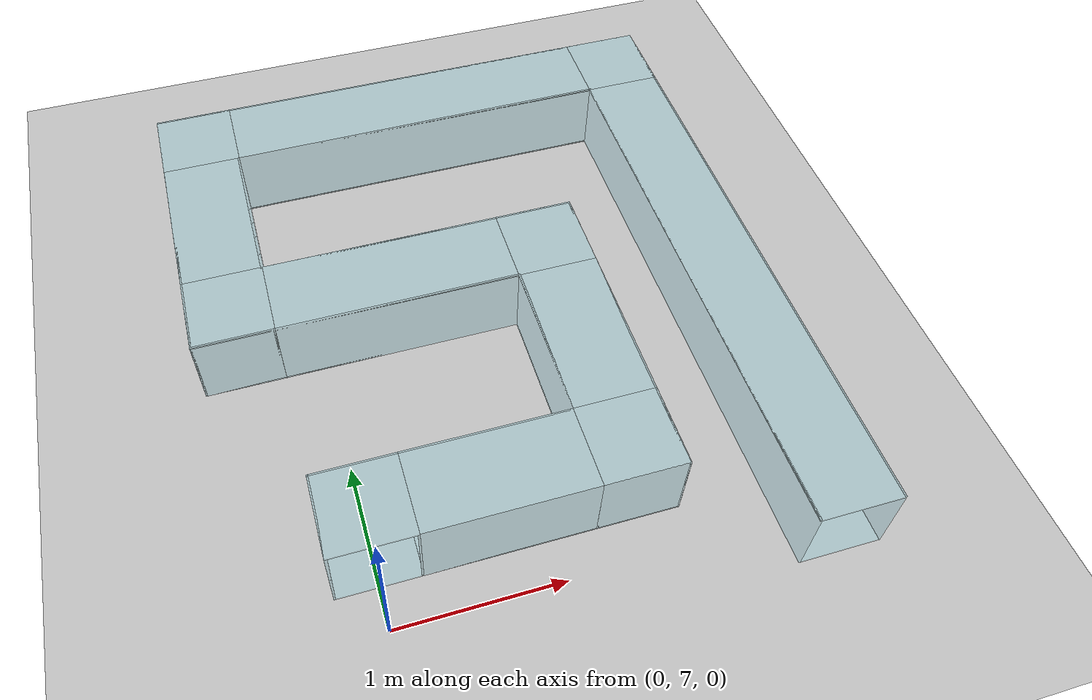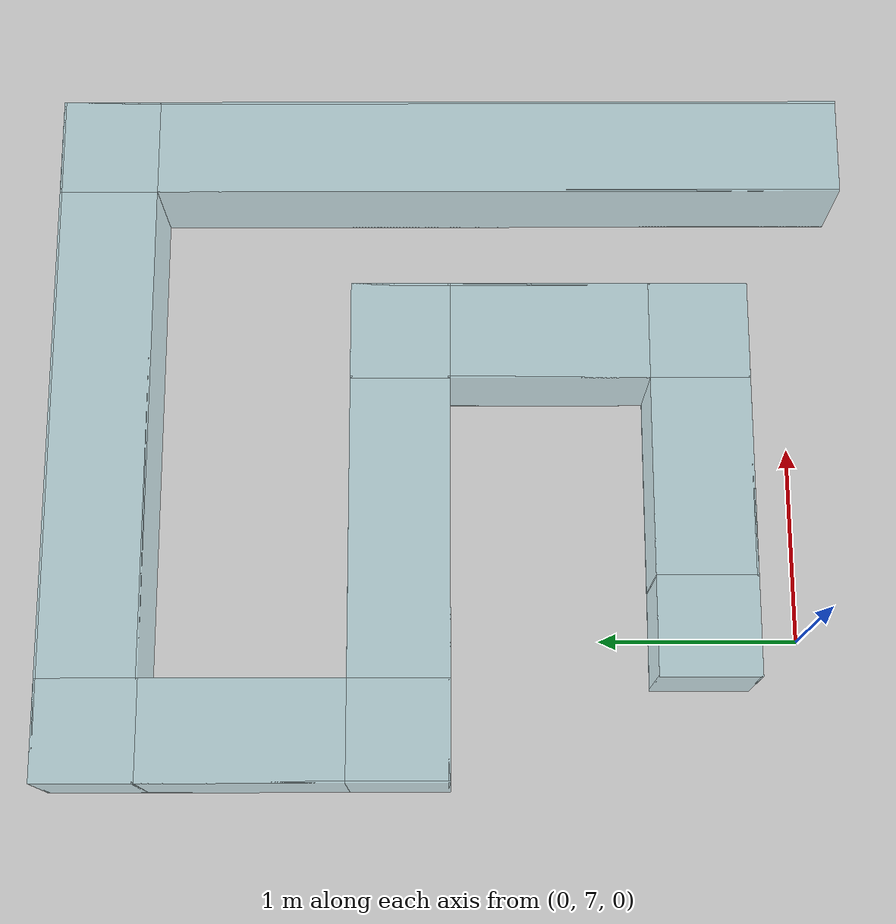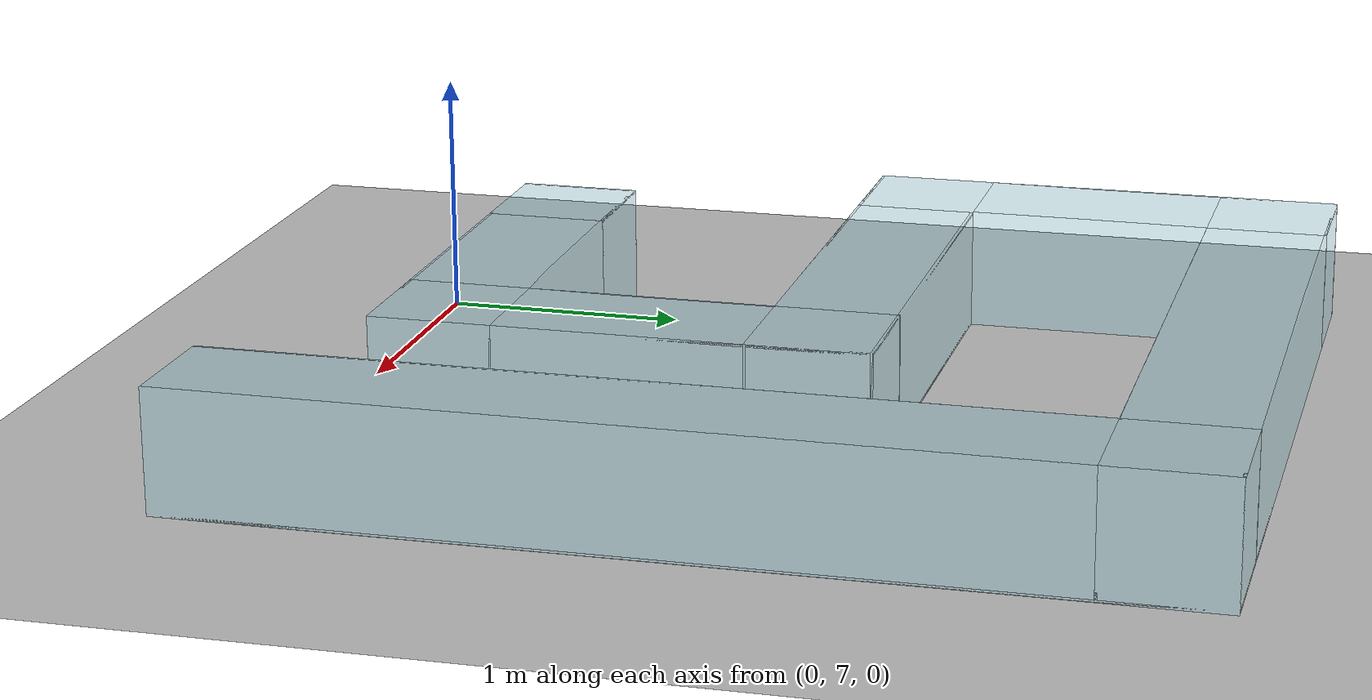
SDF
<sdf version="1.8">
 <world name="demo">
  <model name="ground_plane">
   <static>true</static>
   <link name="link">
    <collision name="collision">
     <geometry><plane><normal>0 0 1</normal><size>100 100</size></plane></geometry>
    </collision>
    <visual name="visual">
     <geometry><plane><normal>0 0 1</normal><size>100 100</size></plane></geometry>
     <material>
      <ambient>0.8 0.8 0.8 1</ambient>
      <diffuse>0.8 0.8 0.8 1</diffuse>
      <specular>0.8 0.8 0.8 1</specular>
     </material>
    </visual>
   </link>
  </model>
  <model name="ground_plane">
   <static>true</static>
   <link name="link">
    <collision name="collision">
     <geometry><plane><normal>0 0 1</normal><size>100 100</size></plane></geometry>
    </collision>
    <visual name="visual">
     <geometry><plane><normal>0 0 1</normal><size>100 100</size></plane></geometry>
     <material>
      <ambient>0.6 0.85 0.9 0.4</ambient>
      <diffuse>0.6 0.85 0.9 0.4</diffuse>
      <specular>0.1 0.1 0.1 1</specular>
      <emissive>0 0 0 1</emissive>
     </material>
    </visual>
   </link>
  </model>
  <model name="T9">
   <pose>0.750000 7.500000 0.250000 0.000000 0.000000 0.000000</pose>
   <static>true</static>
   <link name="link">
    <collision name="col_side_posY">
     <pose>0.000000 0.245000 0.000000 0.000000 0.000000 0.000000</pose>
     <geometry><box><size>1.000000 0.010000 0.500000</size></box></geometry>
    </collision>
    <visual name="vis_col_side_posY">
     <pose>0.000000 0.245000 0.000000 0.000000 0.000000 0.000000</pose>
     <geometry><box><size>1.000000 0.010000 0.500000</size></box></geometry>
     <material>
      <ambient>0.6 0.85 0.9 0.4</ambient>
      <diffuse>0.6 0.85 0.9 0.4</diffuse>
      <specular>0.1 0.1 0.1 1</specular>
      <emissive>0 0 0 1</emissive>
     </material>
    </visual>
    <collision name="col_side_negY">
     <pose>0.000000 -0.245000 0.000000 0.000000 0.000000 0.000000</pose>
     <geometry><box><size>1.000000 0.010000 0.500000</size></box></geometry>
    </collision>
    <visual name="vis_col_side_negY">
     <pose>0.000000 -0.245000 0.000000 0.000000 0.000000 0.000000</pose>
     <geometry><box><size>1.000000 0.010000 0.500000</size></box></geometry>
     <material>
      <ambient>0.6 0.85 0.9 0.4</ambient>
      <diffuse>0.6 0.85 0.9 0.4</diffuse>
      <specular>0.1 0.1 0.1 1</specular>
      <emissive>0 0 0 1</emissive>
     </material>
    </visual>
    <collision name="col_top">
     <pose>0.000000 0.000000 0.245000 0.000000 0.000000 0.000000</pose>
     <geometry><box><size>1.000000 0.500000 0.010000</size></box></geometry>
    </collision>
    <visual name="vis_col_top">
     <pose>0.000000 0.000000 0.245000 0.000000 0.000000 0.000000</pose>
     <geometry><box><size>1.000000 0.500000 0.010000</size></box></geometry>
     <material>
      <ambient>0.6 0.85 0.9 0.4</ambient>
      <diffuse>0.6 0.85 0.9 0.4</diffuse>
      <specular>0.1 0.1 0.1 1</specular>
      <emissive>0 0 0 1</emissive>
     </material>
    </visual>
    <collision name="col_bottom">
     <pose>0.000000 0.000000 -0.245000 0.000000 0.000000 0.000000</pose>
     <geometry><box><size>1.000000 0.500000 0.010000</size></box></geometry>
    </collision>
    <visual name="vis_col_bottom">
     <pose>0.000000 0.000000 -0.245000 0.000000 0.000000 0.000000</pose>
     <geometry><box><size>1.000000 0.500000 0.010000</size></box></geometry>
     <material>
      <ambient>0.6 0.85 0.9 0.4</ambient>
      <diffuse>0.6 0.85 0.9 0.4</diffuse>
      <specular>0.1 0.1 0.1 1</specular>
      <emissive>0 0 0 1</emissive>
     </material>
    </visual>
   </link>
  </model>
  <model name="T10">
   <pose>1.500000 8.250000 0.250000 0.000000 0.000000 0.000000</pose>
   <static>true</static>
   <link name="link">
    <collision name="col_side_posX">
     <pose>0.245000 0.000000 0.000000 0.000000 0.000000 0.000000</pose>
     <geometry><box><size>0.010000 1.000000 0.500000</size></box></geometry>
    </collision>
    <visual name="vis_col_side_posX">
     <pose>0.245000 0.000000 0.000000 0.000000 0.000000 0.000000</pose>
     <geometry><box><size>0.010000 1.000000 0.500000</size></box></geometry>
     <material>
      <ambient>0.6 0.85 0.9 0.4</ambient>
      <diffuse>0.6 0.85 0.9 0.4</diffuse>
      <specular>0.1 0.1 0.1 1</specular>
      <emissive>0 0 0 1</emissive>
     </material>
    </visual>
    <collision name="col_side_negX">
     <pose>-0.245000 0.000000 0.000000 0.000000 0.000000 0.000000</pose>
     <geometry><box><size>0.010000 1.000000 0.500000</size></box></geometry>
    </collision>
    <visual name="vis_col_side_negX">
     <pose>-0.245000 0.000000 0.000000 0.000000 0.000000 0.000000</pose>
     <geometry><box><size>0.010000 1.000000 0.500000</size></box></geometry>
     <material>
      <ambient>0.6 0.85 0.9 0.4</ambient>
      <diffuse>0.6 0.85 0.9 0.4</diffuse>
      <specular>0.1 0.1 0.1 1</specular>
      <emissive>0 0 0 1</emissive>
     </material>
    </visual>
    <collision name="col_top">
     <pose>0.000000 0.000000 0.245000 0.000000 0.000000 0.000000</pose>
     <geometry><box><size>0.500000 1.000000 0.010000</size></box></geometry>
    </collision>
    <visual name="vis_col_top">
     <pose>0.000000 0.000000 0.245000 0.000000 0.000000 0.000000</pose>
     <geometry><box><size>0.500000 1.000000 0.010000</size></box></geometry>
     <material>
      <ambient>0.6 0.85 0.9 0.4</ambient>
      <diffuse>0.6 0.85 0.9 0.4</diffuse>
      <specular>0.1 0.1 0.1 1</specular>
      <emissive>0 0 0 1</emissive>
     </material>
    </visual>
    <collision name="col_bottom">
     <pose>0.000000 0.000000 -0.245000 0.000000 0.000000 0.000000</pose>
     <geometry><box><size>0.500000 1.000000 0.010000</size></box></geometry>
    </collision>
    <visual name="vis_col_bottom">
     <pose>0.000000 0.000000 -0.245000 0.000000 0.000000 0.000000</pose>
     <geometry><box><size>0.500000 1.000000 0.010000</size></box></geometry>
     <material>
      <ambient>0.6 0.85 0.9 0.4</ambient>
      <diffuse>0.6 0.85 0.9 0.4</diffuse>
      <specular>0.1 0.1 0.1 1</specular>
      <emissive>0 0 0 1</emissive>
     </material>
    </visual>
   </link>
  </model>
  <model name="T11">
   <pose>0.500000 9.000000 0.250000 0.000000 0.000000 0.000000</pose>
   <static>true</static>
   <link name="link">
    <collision name="col_side_posY">
     <pose>0.000000 0.245000 0.000000 0.000000 0.000000 0.000000</pose>
     <geometry><box><size>1.500000 0.010000 0.500000</size></box></geometry>
    </collision>
    <visual name="vis_col_side_posY">
     <pose>0.000000 0.245000 0.000000 0.000000 0.000000 0.000000</pose>
     <geometry><box><size>1.500000 0.010000 0.500000</size></box></geometry>
     <material>
      <ambient>0.6 0.85 0.9 0.4</ambient>
      <diffuse>0.6 0.85 0.9 0.4</diffuse>
      <specular>0.1 0.1 0.1 1</specular>
      <emissive>0 0 0 1</emissive>
     </material>
    </visual>
    <collision name="col_side_negY">
     <pose>0.000000 -0.245000 0.000000 0.000000 0.000000 0.000000</pose>
     <geometry><box><size>1.500000 0.010000 0.500000</size></box></geometry>
    </collision>
    <visual name="vis_col_side_negY">
     <pose>0.000000 -0.245000 0.000000 0.000000 0.000000 0.000000</pose>
     <geometry><box><size>1.500000 0.010000 0.500000</size></box></geometry>
     <material>
      <ambient>0.6 0.85 0.9 0.4</ambient>
      <diffuse>0.6 0.85 0.9 0.4</diffuse>
      <specular>0.1 0.1 0.1 1</specular>
      <emissive>0 0 0 1</emissive>
     </material>
    </visual>
    <collision name="col_top">
     <pose>0.000000 0.000000 0.245000 0.000000 0.000000 0.000000</pose>
     <geometry><box><size>1.500000 0.500000 0.010000</size></box></geometry>
    </collision>
    <visual name="vis_col_top">
     <pose>0.000000 0.000000 0.245000 0.000000 0.000000 0.000000</pose>
     <geometry><box><size>1.500000 0.500000 0.010000</size></box></geometry>
     <material>
      <ambient>0.6 0.85 0.9 0.4</ambient>
      <diffuse>0.6 0.85 0.9 0.4</diffuse>
      <specular>0.1 0.1 0.1 1</specular>
      <emissive>0 0 0 1</emissive>
     </material>
    </visual>
    <collision name="col_bottom">
     <pose>0.000000 0.000000 -0.245000 0.000000 0.000000 0.000000</pose>
     <geometry><box><size>1.500000 0.500000 0.010000</size></box></geometry>
    </collision>
    <visual name="vis_col_bottom">
     <pose>0.000000 0.000000 -0.245000 0.000000 0.000000 0.000000</pose>
     <geometry><box><size>1.500000 0.500000 0.010000</size></box></geometry>
     <material>
      <ambient>0.6 0.85 0.9 0.4</ambient>
      <diffuse>0.6 0.85 0.9 0.4</diffuse>
      <specular>0.1 0.1 0.1 1</specular>
      <emissive>0 0 0 1</emissive>
     </material>
    </visual>
   </link>
  </model>
  <model name="T12">
   <pose>-0.500000 9.750000 0.250000 0.000000 0.000000 0.000000</pose>
   <static>true</static>
   <link name="link">
    <collision name="col_side_posX">
     <pose>0.245000 0.000000 0.000000 0.000000 0.000000 0.000000</pose>
     <geometry><box><size>0.010000 1.000000 0.500000</size></box></geometry>
    </collision>
    <visual name="vis_col_side_posX">
     <pose>0.245000 0.000000 0.000000 0.000000 0.000000 0.000000</pose>
     <geometry><box><size>0.010000 1.000000 0.500000</size></box></geometry>
     <material>
      <ambient>0.6 0.85 0.9 0.4</ambient>
      <diffuse>0.6 0.85 0.9 0.4</diffuse>
      <specular>0.1 0.1 0.1 1</specular>
      <emissive>0 0 0 1</emissive>
     </material>
    </visual>
    <collision name="col_side_negX">
     <pose>-0.245000 0.000000 0.000000 0.000000 0.000000 0.000000</pose>
     <geometry><box><size>0.010000 1.000000 0.500000</size></box></geometry>
    </collision>
    <visual name="vis_col_side_negX">
     <pose>-0.245000 0.000000 0.000000 0.000000 0.000000 0.000000</pose>
     <geometry><box><size>0.010000 1.000000 0.500000</size></box></geometry>
     <material>
      <ambient>0.6 0.85 0.9 0.4</ambient>
      <diffuse>0.6 0.85 0.9 0.4</diffuse>
      <specular>0.1 0.1 0.1 1</specular>
      <emissive>0 0 0 1</emissive>
     </material>
    </visual>
    <collision name="col_top">
     <pose>0.000000 0.000000 0.245000 0.000000 0.000000 0.000000</pose>
     <geometry><box><size>0.500000 1.000000 0.010000</size></box></geometry>
    </collision>
    <visual name="vis_col_top">
     <pose>0.000000 0.000000 0.245000 0.000000 0.000000 0.000000</pose>
     <geometry><box><size>0.500000 1.000000 0.010000</size></box></geometry>
     <material>
      <ambient>0.6 0.85 0.9 0.4</ambient>
      <diffuse>0.6 0.85 0.9 0.4</diffuse>
      <specular>0.1 0.1 0.1 1</specular>
      <emissive>0 0 0 1</emissive>
     </material>
    </visual>
    <collision name="col_bottom">
     <pose>0.000000 0.000000 -0.245000 0.000000 0.000000 0.000000</pose>
     <geometry><box><size>0.500000 1.000000 0.010000</size></box></geometry>
    </collision>
    <visual name="vis_col_bottom">
     <pose>0.000000 0.000000 -0.245000 0.000000 0.000000 0.000000</pose>
     <geometry><box><size>0.500000 1.000000 0.010000</size></box></geometry>
     <material>
      <ambient>0.6 0.85 0.9 0.4</ambient>
      <diffuse>0.6 0.85 0.9 0.4</diffuse>
      <specular>0.1 0.1 0.1 1</specular>
      <emissive>0 0 0 1</emissive>
     </material>
    </visual>
   </link>
  </model>
  <model name="T13">
   <pose>1.000000 10.500000 0.250000 0.000000 0.000000 0.000000</pose>
   <static>true</static>
   <link name="link">
    <collision name="col_side_posY">
     <pose>0.000000 0.245000 0.000000 0.000000 0.000000 0.000000</pose>
     <geometry><box><size>2.500000 0.010000 0.500000</size></box></geometry>
    </collision>
    <visual name="vis_col_side_posY">
     <pose>0.000000 0.245000 0.000000 0.000000 0.000000 0.000000</pose>
     <geometry><box><size>2.500000 0.010000 0.500000</size></box></geometry>
     <material>
      <ambient>0.6 0.85 0.9 0.4</ambient>
      <diffuse>0.6 0.85 0.9 0.4</diffuse>
      <specular>0.1 0.1 0.1 1</specular>
      <emissive>0 0 0 1</emissive>
     </material>
    </visual>
    <collision name="col_side_negY">
     <pose>0.000000 -0.245000 0.000000 0.000000 0.000000 0.000000</pose>
     <geometry><box><size>2.500000 0.010000 0.500000</size></box></geometry>
    </collision>
    <visual name="vis_col_side_negY">
     <pose>0.000000 -0.245000 0.000000 0.000000 0.000000 0.000000</pose>
     <geometry><box><size>2.500000 0.010000 0.500000</size></box></geometry>
     <material>
      <ambient>0.6 0.85 0.9 0.4</ambient>
      <diffuse>0.6 0.85 0.9 0.4</diffuse>
      <specular>0.1 0.1 0.1 1</specular>
      <emissive>0 0 0 1</emissive>
     </material>
    </visual>
    <collision name="col_top">
     <pose>0.000000 0.000000 0.245000 0.000000 0.000000 0.000000</pose>
     <geometry><box><size>2.500000 0.500000 0.010000</size></box></geometry>
    </collision>
    <visual name="vis_col_top">
     <pose>0.000000 0.000000 0.245000 0.000000 0.000000 0.000000</pose>
     <geometry><box><size>2.500000 0.500000 0.010000</size></box></geometry>
     <material>
      <ambient>0.6 0.85 0.9 0.4</ambient>
      <diffuse>0.6 0.85 0.9 0.4</diffuse>
      <specular>0.1 0.1 0.1 1</specular>
      <emissive>0 0 0 1</emissive>
     </material>
    </visual>
    <collision name="col_bottom">
     <pose>0.000000 0.000000 -0.245000 0.000000 0.000000 0.000000</pose>
     <geometry><box><size>2.500000 0.500000 0.010000</size></box></geometry>
    </collision>
    <visual name="vis_col_bottom">
     <pose>0.000000 0.000000 -0.245000 0.000000 0.000000 0.000000</pose>
     <geometry><box><size>2.500000 0.500000 0.010000</size></box></geometry>
     <material>
      <ambient>0.6 0.85 0.9 0.4</ambient>
      <diffuse>0.6 0.85 0.9 0.4</diffuse>
      <specular>0.1 0.1 0.1 1</specular>
      <emissive>0 0 0 1</emissive>
     </material>
    </visual>
   </link>
  </model>
  <model name="T14">
   <pose>2.500000 8.500000 0.250000 0.000000 0.000000 0.000000</pose>
   <static>true</static>
   <link name="link">
    <collision name="col_side_posX">
     <pose>0.245000 0.000000 0.000000 0.000000 0.000000 0.000000</pose>
     <geometry><box><size>0.010000 3.500000 0.500000</size></box></geometry>
    </collision>
    <visual name="vis_col_side_posX">
     <pose>0.245000 0.000000 0.000000 0.000000 0.000000 0.000000</pose>
     <geometry><box><size>0.010000 3.500000 0.500000</size></box></geometry>
     <material>
      <ambient>0.6 0.85 0.9 0.4</ambient>
      <diffuse>0.6 0.85 0.9 0.4</diffuse>
      <specular>0.1 0.1 0.1 1</specular>
      <emissive>0 0 0 1</emissive>
     </material>
    </visual>
    <collision name="col_side_negX">
     <pose>-0.245000 0.000000 0.000000 0.000000 0.000000 0.000000</pose>
     <geometry><box><size>0.010000 3.500000 0.500000</size></box></geometry>
    </collision>
    <visual name="vis_col_side_negX">
     <pose>-0.245000 0.000000 0.000000 0.000000 0.000000 0.000000</pose>
     <geometry><box><size>0.010000 3.500000 0.500000</size></box></geometry>
     <material>
      <ambient>0.6 0.85 0.9 0.4</ambient>
      <diffuse>0.6 0.85 0.9 0.4</diffuse>
      <specular>0.1 0.1 0.1 1</specular>
      <emissive>0 0 0 1</emissive>
     </material>
    </visual>
    <collision name="col_top">
     <pose>0.000000 0.000000 0.245000 0.000000 0.000000 0.000000</pose>
     <geometry><box><size>0.500000 3.500000 0.010000</size></box></geometry>
    </collision>
    <visual name="vis_col_top">
     <pose>0.000000 0.000000 0.245000 0.000000 0.000000 0.000000</pose>
     <geometry><box><size>0.500000 3.500000 0.010000</size></box></geometry>
     <material>
      <ambient>0.6 0.85 0.9 0.4</ambient>
      <diffuse>0.6 0.85 0.9 0.4</diffuse>
      <specular>0.1 0.1 0.1 1</specular>
      <emissive>0 0 0 1</emissive>
     </material>
    </visual>
    <collision name="col_bottom">
     <pose>0.000000 0.000000 -0.245000 0.000000 0.000000 0.000000</pose>
     <geometry><box><size>0.500000 3.500000 0.010000</size></box></geometry>
    </collision>
    <visual name="vis_col_bottom">
     <pose>0.000000 0.000000 -0.245000 0.000000 0.000000 0.000000</pose>
     <geometry><box><size>0.500000 3.500000 0.010000</size></box></geometry>
     <material>
      <ambient>0.6 0.85 0.9 0.4</ambient>
      <diffuse>0.6 0.85 0.9 0.4</diffuse>
      <specular>0.1 0.1 0.1 1</specular>
      <emissive>0 0 0 1</emissive>
     </material>
    </visual>
   </link>
  </model>
  <model name="C8">
   <pose>0.000000 7.500000 0.250000 0.000000 0.000000 0.000000</pose>
   <static>true</static>
   <link name="link">
    <collision name="wall_negX">
     <pose>-0.245000 0.000000 0.000000 0.000000 0.000000 0.000000</pose>
     <geometry><box><size>0.010000 0.500000 0.500000</size></box></geometry>
    </collision>
    <visual name="vis_wall_negX">
     <pose>-0.245000 0.000000 0.000000 0.000000 0.000000 0.000000</pose>
     <geometry><box><size>0.010000 0.500000 0.500000</size></box></geometry>
     <material>
      <ambient>0.6 0.85 0.9 0.4</ambient>
      <diffuse>0.6 0.85 0.9 0.4</diffuse>
      <specular>0.1 0.1 0.1 1</specular>
      <emissive>0 0 0 1</emissive>
     </material>
    </visual>
    <collision name="wall_posY">
     <pose>0.000000 0.245000 0.000000 0.000000 0.000000 0.000000</pose>
     <geometry><box><size>0.500000 0.010000 0.500000</size></box></geometry>
    </collision>
    <visual name="vis_wall_posY">
     <pose>0.000000 0.245000 0.000000 0.000000 0.000000 0.000000</pose>
     <geometry><box><size>0.500000 0.010000 0.500000</size></box></geometry>
     <material>
      <ambient>0.6 0.85 0.9 0.4</ambient>
      <diffuse>0.6 0.85 0.9 0.4</diffuse>
      <specular>0.1 0.1 0.1 1</specular>
      <emissive>0 0 0 1</emissive>
     </material>
    </visual>
    <collision name="wall_posZ">
     <pose>0.000000 0.000000 0.245000 0.000000 0.000000 0.000000</pose>
     <geometry><box><size>0.500000 0.500000 0.010000</size></box></geometry>
    </collision>
    <visual name="vis_wall_posZ">
     <pose>0.000000 0.000000 0.245000 0.000000 0.000000 0.000000</pose>
     <geometry><box><size>0.500000 0.500000 0.010000</size></box></geometry>
     <material>
      <ambient>0.6 0.85 0.9 0.4</ambient>
      <diffuse>0.6 0.85 0.9 0.4</diffuse>
      <specular>0.1 0.1 0.1 1</specular>
      <emissive>0 0 0 1</emissive>
     </material>
    </visual>
    <collision name="wall_negZ">
     <pose>0.000000 0.000000 -0.245000 0.000000 0.000000 0.000000</pose>
     <geometry><box><size>0.500000 0.500000 0.010000</size></box></geometry>
    </collision>
    <visual name="vis_wall_negZ">
     <pose>0.000000 0.000000 -0.245000 0.000000 0.000000 0.000000</pose>
     <geometry><box><size>0.500000 0.500000 0.010000</size></box></geometry>
     <material>
      <ambient>0.6 0.85 0.9 0.4</ambient>
      <diffuse>0.6 0.85 0.9 0.4</diffuse>
      <specular>0.1 0.1 0.1 1</specular>
      <emissive>0 0 0 1</emissive>
     </material>
    </visual>
    <collision name="corner_pXpY">
     <pose>0.245000 0.245000 0.000000 0.000000 0.000000 0.000000</pose>
     <geometry><box><size>0.010000 0.010000 0.500000</size></box></geometry>
    </collision>
    <visual name="vis_corner_pXpY">
     <pose>0.245000 0.245000 0.000000 0.000000 0.000000 0.000000</pose>
     <geometry><box><size>0.010000 0.010000 0.500000</size></box></geometry>
     <material>
      <ambient>0.6 0.85 0.9 0.4</ambient>
      <diffuse>0.6 0.85 0.9 0.4</diffuse>
      <specular>0.1 0.1 0.1 1</specular>
      <emissive>0 0 0 1</emissive>
     </material>
    </visual>
    <collision name="corner_pXmY">
     <pose>0.245000 -0.245000 0.000000 0.000000 0.000000 0.000000</pose>
     <geometry><box><size>0.010000 0.010000 0.500000</size></box></geometry>
    </collision>
    <visual name="vis_corner_pXmY">
     <pose>0.245000 -0.245000 0.000000 0.000000 0.000000 0.000000</pose>
     <geometry><box><size>0.010000 0.010000 0.500000</size></box></geometry>
     <material>
      <ambient>0.6 0.85 0.9 0.4</ambient>
      <diffuse>0.6 0.85 0.9 0.4</diffuse>
      <specular>0.1 0.1 0.1 1</specular>
      <emissive>0 0 0 1</emissive>
     </material>
    </visual>
    <collision name="corner_mXmY">
     <pose>-0.245000 -0.245000 0.000000 0.000000 0.000000 0.000000</pose>
     <geometry><box><size>0.010000 0.010000 0.500000</size></box></geometry>
    </collision>
    <visual name="vis_corner_mXmY">
     <pose>-0.245000 -0.245000 0.000000 0.000000 0.000000 0.000000</pose>
     <geometry><box><size>0.010000 0.010000 0.500000</size></box></geometry>
     <material>
      <ambient>0.6 0.85 0.9 0.4</ambient>
      <diffuse>0.6 0.85 0.9 0.4</diffuse>
      <specular>0.1 0.1 0.1 1</specular>
      <emissive>0 0 0 1</emissive>
     </material>
    </visual>
   </link>
  </model>
  <model name="C9">
   <pose>1.500000 7.500000 0.250000 0.000000 0.000000 0.000000</pose>
   <static>true</static>
   <link name="link">
    <collision name="wall_posX">
     <pose>0.245000 0.000000 0.000000 0.000000 0.000000 0.000000</pose>
     <geometry><box><size>0.010000 0.500000 0.500000</size></box></geometry>
    </collision>
    <visual name="vis_wall_posX">
     <pose>0.245000 0.000000 0.000000 0.000000 0.000000 0.000000</pose>
     <geometry><box><size>0.010000 0.500000 0.500000</size></box></geometry>
     <material>
      <ambient>0.6 0.85 0.9 0.4</ambient>
      <diffuse>0.6 0.85 0.9 0.4</diffuse>
      <specular>0.1 0.1 0.1 1</specular>
      <emissive>0 0 0 1</emissive>
     </material>
    </visual>
    <collision name="wall_negY">
     <pose>0.000000 -0.245000 0.000000 0.000000 0.000000 0.000000</pose>
     <geometry><box><size>0.500000 0.010000 0.500000</size></box></geometry>
    </collision>
    <visual name="vis_wall_negY">
     <pose>0.000000 -0.245000 0.000000 0.000000 0.000000 0.000000</pose>
     <geometry><box><size>0.500000 0.010000 0.500000</size></box></geometry>
     <material>
      <ambient>0.6 0.85 0.9 0.4</ambient>
      <diffuse>0.6 0.85 0.9 0.4</diffuse>
      <specular>0.1 0.1 0.1 1</specular>
      <emissive>0 0 0 1</emissive>
     </material>
    </visual>
    <collision name="wall_posZ">
     <pose>0.000000 0.000000 0.245000 0.000000 0.000000 0.000000</pose>
     <geometry><box><size>0.500000 0.500000 0.010000</size></box></geometry>
    </collision>
    <visual name="vis_wall_posZ">
     <pose>0.000000 0.000000 0.245000 0.000000 0.000000 0.000000</pose>
     <geometry><box><size>0.500000 0.500000 0.010000</size></box></geometry>
     <material>
      <ambient>0.6 0.85 0.9 0.4</ambient>
      <diffuse>0.6 0.85 0.9 0.4</diffuse>
      <specular>0.1 0.1 0.1 1</specular>
      <emissive>0 0 0 1</emissive>
     </material>
    </visual>
    <collision name="wall_negZ">
     <pose>0.000000 0.000000 -0.245000 0.000000 0.000000 0.000000</pose>
     <geometry><box><size>0.500000 0.500000 0.010000</size></box></geometry>
    </collision>
    <visual name="vis_wall_negZ">
     <pose>0.000000 0.000000 -0.245000 0.000000 0.000000 0.000000</pose>
     <geometry><box><size>0.500000 0.500000 0.010000</size></box></geometry>
     <material>
      <ambient>0.6 0.85 0.9 0.4</ambient>
      <diffuse>0.6 0.85 0.9 0.4</diffuse>
      <specular>0.1 0.1 0.1 1</specular>
      <emissive>0 0 0 1</emissive>
     </material>
    </visual>
    <collision name="corner_pXpY">
     <pose>0.245000 0.245000 0.000000 0.000000 0.000000 0.000000</pose>
     <geometry><box><size>0.010000 0.010000 0.500000</size></box></geometry>
    </collision>
    <visual name="vis_corner_pXpY">
     <pose>0.245000 0.245000 0.000000 0.000000 0.000000 0.000000</pose>
     <geometry><box><size>0.010000 0.010000 0.500000</size></box></geometry>
     <material>
      <ambient>0.6 0.85 0.9 0.4</ambient>
      <diffuse>0.6 0.85 0.9 0.4</diffuse>
      <specular>0.1 0.1 0.1 1</specular>
      <emissive>0 0 0 1</emissive>
     </material>
    </visual>
    <collision name="corner_mXpY">
     <pose>-0.245000 0.245000 0.000000 0.000000 0.000000 0.000000</pose>
     <geometry><box><size>0.010000 0.010000 0.500000</size></box></geometry>
    </collision>
    <visual name="vis_corner_mXpY">
     <pose>-0.245000 0.245000 0.000000 0.000000 0.000000 0.000000</pose>
     <geometry><box><size>0.010000 0.010000 0.500000</size></box></geometry>
     <material>
      <ambient>0.6 0.85 0.9 0.4</ambient>
      <diffuse>0.6 0.85 0.9 0.4</diffuse>
      <specular>0.1 0.1 0.1 1</specular>
      <emissive>0 0 0 1</emissive>
     </material>
    </visual>
    <collision name="corner_mXmY">
     <pose>-0.245000 -0.245000 0.000000 0.000000 0.000000 0.000000</pose>
     <geometry><box><size>0.010000 0.010000 0.500000</size></box></geometry>
    </collision>
    <visual name="vis_corner_mXmY">
     <pose>-0.245000 -0.245000 0.000000 0.000000 0.000000 0.000000</pose>
     <geometry><box><size>0.010000 0.010000 0.500000</size></box></geometry>
     <material>
      <ambient>0.6 0.85 0.9 0.4</ambient>
      <diffuse>0.6 0.85 0.9 0.4</diffuse>
      <specular>0.1 0.1 0.1 1</specular>
      <emissive>0 0 0 1</emissive>
     </material>
    </visual>
   </link>
  </model>
  <model name="C10">
   <pose>1.500000 9.000000 0.250000 0.000000 0.000000 0.000000</pose>
   <static>true</static>
   <link name="link">
    <collision name="wall_posX">
     <pose>0.245000 0.000000 0.000000 0.000000 0.000000 0.000000</pose>
     <geometry><box><size>0.010000 0.500000 0.500000</size></box></geometry>
    </collision>
    <visual name="vis_wall_posX">
     <pose>0.245000 0.000000 0.000000 0.000000 0.000000 0.000000</pose>
     <geometry><box><size>0.010000 0.500000 0.500000</size></box></geometry>
     <material>
      <ambient>0.6 0.85 0.9 0.4</ambient>
      <diffuse>0.6 0.85 0.9 0.4</diffuse>
      <specular>0.1 0.1 0.1 1</specular>
      <emissive>0 0 0 1</emissive>
     </material>
    </visual>
    <collision name="wall_posY">
     <pose>0.000000 0.245000 0.000000 0.000000 0.000000 0.000000</pose>
     <geometry><box><size>0.500000 0.010000 0.500000</size></box></geometry>
    </collision>
    <visual name="vis_wall_posY">
     <pose>0.000000 0.245000 0.000000 0.000000 0.000000 0.000000</pose>
     <geometry><box><size>0.500000 0.010000 0.500000</size></box></geometry>
     <material>
      <ambient>0.6 0.85 0.9 0.4</ambient>
      <diffuse>0.6 0.85 0.9 0.4</diffuse>
      <specular>0.1 0.1 0.1 1</specular>
      <emissive>0 0 0 1</emissive>
     </material>
    </visual>
    <collision name="wall_posZ">
     <pose>0.000000 0.000000 0.245000 0.000000 0.000000 0.000000</pose>
     <geometry><box><size>0.500000 0.500000 0.010000</size></box></geometry>
    </collision>
    <visual name="vis_wall_posZ">
     <pose>0.000000 0.000000 0.245000 0.000000 0.000000 0.000000</pose>
     <geometry><box><size>0.500000 0.500000 0.010000</size></box></geometry>
     <material>
      <ambient>0.6 0.85 0.9 0.4</ambient>
      <diffuse>0.6 0.85 0.9 0.4</diffuse>
      <specular>0.1 0.1 0.1 1</specular>
      <emissive>0 0 0 1</emissive>
     </material>
    </visual>
    <collision name="wall_negZ">
     <pose>0.000000 0.000000 -0.245000 0.000000 0.000000 0.000000</pose>
     <geometry><box><size>0.500000 0.500000 0.010000</size></box></geometry>
    </collision>
    <visual name="vis_wall_negZ">
     <pose>0.000000 0.000000 -0.245000 0.000000 0.000000 0.000000</pose>
     <geometry><box><size>0.500000 0.500000 0.010000</size></box></geometry>
     <material>
      <ambient>0.6 0.85 0.9 0.4</ambient>
      <diffuse>0.6 0.85 0.9 0.4</diffuse>
      <specular>0.1 0.1 0.1 1</specular>
      <emissive>0 0 0 1</emissive>
     </material>
    </visual>
    <collision name="corner_pXmY">
     <pose>0.245000 -0.245000 0.000000 0.000000 0.000000 0.000000</pose>
     <geometry><box><size>0.010000 0.010000 0.500000</size></box></geometry>
    </collision>
    <visual name="vis_corner_pXmY">
     <pose>0.245000 -0.245000 0.000000 0.000000 0.000000 0.000000</pose>
     <geometry><box><size>0.010000 0.010000 0.500000</size></box></geometry>
     <material>
      <ambient>0.6 0.85 0.9 0.4</ambient>
      <diffuse>0.6 0.85 0.9 0.4</diffuse>
      <specular>0.1 0.1 0.1 1</specular>
      <emissive>0 0 0 1</emissive>
     </material>
    </visual>
    <collision name="corner_mXpY">
     <pose>-0.245000 0.245000 0.000000 0.000000 0.000000 0.000000</pose>
     <geometry><box><size>0.010000 0.010000 0.500000</size></box></geometry>
    </collision>
    <visual name="vis_corner_mXpY">
     <pose>-0.245000 0.245000 0.000000 0.000000 0.000000 0.000000</pose>
     <geometry><box><size>0.010000 0.010000 0.500000</size></box></geometry>
     <material>
      <ambient>0.6 0.85 0.9 0.4</ambient>
      <diffuse>0.6 0.85 0.9 0.4</diffuse>
      <specular>0.1 0.1 0.1 1</specular>
      <emissive>0 0 0 1</emissive>
     </material>
    </visual>
    <collision name="corner_mXmY">
     <pose>-0.245000 -0.245000 0.000000 0.000000 0.000000 0.000000</pose>
     <geometry><box><size>0.010000 0.010000 0.500000</size></box></geometry>
    </collision>
    <visual name="vis_corner_mXmY">
     <pose>-0.245000 -0.245000 0.000000 0.000000 0.000000 0.000000</pose>
     <geometry><box><size>0.010000 0.010000 0.500000</size></box></geometry>
     <material>
      <ambient>0.6 0.85 0.9 0.4</ambient>
      <diffuse>0.6 0.85 0.9 0.4</diffuse>
      <specular>0.1 0.1 0.1 1</specular>
      <emissive>0 0 0 1</emissive>
     </material>
    </visual>
   </link>
  </model>
  <model name="C11">
   <pose>-0.500000 9.000000 0.250000 0.000000 0.000000 0.000000</pose>
   <static>true</static>
   <link name="link">
    <collision name="wall_negX">
     <pose>-0.245000 0.000000 0.000000 0.000000 0.000000 0.000000</pose>
     <geometry><box><size>0.010000 0.500000 0.500000</size></box></geometry>
    </collision>
    <visual name="vis_wall_negX">
     <pose>-0.245000 0.000000 0.000000 0.000000 0.000000 0.000000</pose>
     <geometry><box><size>0.010000 0.500000 0.500000</size></box></geometry>
     <material>
      <ambient>0.6 0.85 0.9 0.4</ambient>
      <diffuse>0.6 0.85 0.9 0.4</diffuse>
      <specular>0.1 0.1 0.1 1</specular>
      <emissive>0 0 0 1</emissive>
     </material>
    </visual>
    <collision name="wall_negY">
     <pose>0.000000 -0.245000 0.000000 0.000000 0.000000 0.000000</pose>
     <geometry><box><size>0.500000 0.010000 0.500000</size></box></geometry>
    </collision>
    <visual name="vis_wall_negY">
     <pose>0.000000 -0.245000 0.000000 0.000000 0.000000 0.000000</pose>
     <geometry><box><size>0.500000 0.010000 0.500000</size></box></geometry>
     <material>
      <ambient>0.6 0.85 0.9 0.4</ambient>
      <diffuse>0.6 0.85 0.9 0.4</diffuse>
      <specular>0.1 0.1 0.1 1</specular>
      <emissive>0 0 0 1</emissive>
     </material>
    </visual>
    <collision name="wall_posZ">
     <pose>0.000000 0.000000 0.245000 0.000000 0.000000 0.000000</pose>
     <geometry><box><size>0.500000 0.500000 0.010000</size></box></geometry>
    </collision>
    <visual name="vis_wall_posZ">
     <pose>0.000000 0.000000 0.245000 0.000000 0.000000 0.000000</pose>
     <geometry><box><size>0.500000 0.500000 0.010000</size></box></geometry>
     <material>
      <ambient>0.6 0.85 0.9 0.4</ambient>
      <diffuse>0.6 0.85 0.9 0.4</diffuse>
      <specular>0.1 0.1 0.1 1</specular>
      <emissive>0 0 0 1</emissive>
     </material>
    </visual>
    <collision name="wall_negZ">
     <pose>0.000000 0.000000 -0.245000 0.000000 0.000000 0.000000</pose>
     <geometry><box><size>0.500000 0.500000 0.010000</size></box></geometry>
    </collision>
    <visual name="vis_wall_negZ">
     <pose>0.000000 0.000000 -0.245000 0.000000 0.000000 0.000000</pose>
     <geometry><box><size>0.500000 0.500000 0.010000</size></box></geometry>
     <material>
      <ambient>0.6 0.85 0.9 0.4</ambient>
      <diffuse>0.6 0.85 0.9 0.4</diffuse>
      <specular>0.1 0.1 0.1 1</specular>
      <emissive>0 0 0 1</emissive>
     </material>
    </visual>
    <collision name="corner_pXpY">
     <pose>0.245000 0.245000 0.000000 0.000000 0.000000 0.000000</pose>
     <geometry><box><size>0.010000 0.010000 0.500000</size></box></geometry>
    </collision>
    <visual name="vis_corner_pXpY">
     <pose>0.245000 0.245000 0.000000 0.000000 0.000000 0.000000</pose>
     <geometry><box><size>0.010000 0.010000 0.500000</size></box></geometry>
     <material>
      <ambient>0.6 0.85 0.9 0.4</ambient>
      <diffuse>0.6 0.85 0.9 0.4</diffuse>
      <specular>0.1 0.1 0.1 1</specular>
      <emissive>0 0 0 1</emissive>
     </material>
    </visual>
    <collision name="corner_pXmY">
     <pose>0.245000 -0.245000 0.000000 0.000000 0.000000 0.000000</pose>
     <geometry><box><size>0.010000 0.010000 0.500000</size></box></geometry>
    </collision>
    <visual name="vis_corner_pXmY">
     <pose>0.245000 -0.245000 0.000000 0.000000 0.000000 0.000000</pose>
     <geometry><box><size>0.010000 0.010000 0.500000</size></box></geometry>
     <material>
      <ambient>0.6 0.85 0.9 0.4</ambient>
      <diffuse>0.6 0.85 0.9 0.4</diffuse>
      <specular>0.1 0.1 0.1 1</specular>
      <emissive>0 0 0 1</emissive>
     </material>
    </visual>
    <collision name="corner_mXpY">
     <pose>-0.245000 0.245000 0.000000 0.000000 0.000000 0.000000</pose>
     <geometry><box><size>0.010000 0.010000 0.500000</size></box></geometry>
    </collision>
    <visual name="vis_corner_mXpY">
     <pose>-0.245000 0.245000 0.000000 0.000000 0.000000 0.000000</pose>
     <geometry><box><size>0.010000 0.010000 0.500000</size></box></geometry>
     <material>
      <ambient>0.6 0.85 0.9 0.4</ambient>
      <diffuse>0.6 0.85 0.9 0.4</diffuse>
      <specular>0.1 0.1 0.1 1</specular>
      <emissive>0 0 0 1</emissive>
     </material>
    </visual>
   </link>
  </model>
  <model name="C12">
   <pose>-0.500000 10.500000 0.250000 0.000000 0.000000 0.000000</pose>
   <static>true</static>
   <link name="link">
    <collision name="wall_negX">
     <pose>-0.245000 0.000000 0.000000 0.000000 0.000000 0.000000</pose>
     <geometry><box><size>0.010000 0.500000 0.500000</size></box></geometry>
    </collision>
    <visual name="vis_wall_negX">
     <pose>-0.245000 0.000000 0.000000 0.000000 0.000000 0.000000</pose>
     <geometry><box><size>0.010000 0.500000 0.500000</size></box></geometry>
     <material>
      <ambient>0.6 0.85 0.9 0.4</ambient>
      <diffuse>0.6 0.85 0.9 0.4</diffuse>
      <specular>0.1 0.1 0.1 1</specular>
      <emissive>0 0 0 1</emissive>
     </material>
    </visual>
    <collision name="wall_posY">
     <pose>0.000000 0.245000 0.000000 0.000000 0.000000 0.000000</pose>
     <geometry><box><size>0.500000 0.010000 0.500000</size></box></geometry>
    </collision>
    <visual name="vis_wall_posY">
     <pose>0.000000 0.245000 0.000000 0.000000 0.000000 0.000000</pose>
     <geometry><box><size>0.500000 0.010000 0.500000</size></box></geometry>
     <material>
      <ambient>0.6 0.85 0.9 0.4</ambient>
      <diffuse>0.6 0.85 0.9 0.4</diffuse>
      <specular>0.1 0.1 0.1 1</specular>
      <emissive>0 0 0 1</emissive>
     </material>
    </visual>
    <collision name="wall_posZ">
     <pose>0.000000 0.000000 0.245000 0.000000 0.000000 0.000000</pose>
     <geometry><box><size>0.500000 0.500000 0.010000</size></box></geometry>
    </collision>
    <visual name="vis_wall_posZ">
     <pose>0.000000 0.000000 0.245000 0.000000 0.000000 0.000000</pose>
     <geometry><box><size>0.500000 0.500000 0.010000</size></box></geometry>
     <material>
      <ambient>0.6 0.85 0.9 0.4</ambient>
      <diffuse>0.6 0.85 0.9 0.4</diffuse>
      <specular>0.1 0.1 0.1 1</specular>
      <emissive>0 0 0 1</emissive>
     </material>
    </visual>
    <collision name="wall_negZ">
     <pose>0.000000 0.000000 -0.245000 0.000000 0.000000 0.000000</pose>
     <geometry><box><size>0.500000 0.500000 0.010000</size></box></geometry>
    </collision>
    <visual name="vis_wall_negZ">
     <pose>0.000000 0.000000 -0.245000 0.000000 0.000000 0.000000</pose>
     <geometry><box><size>0.500000 0.500000 0.010000</size></box></geometry>
     <material>
      <ambient>0.6 0.85 0.9 0.4</ambient>
      <diffuse>0.6 0.85 0.9 0.4</diffuse>
      <specular>0.1 0.1 0.1 1</specular>
      <emissive>0 0 0 1</emissive>
     </material>
    </visual>
    <collision name="corner_pXpY">
     <pose>0.245000 0.245000 0.000000 0.000000 0.000000 0.000000</pose>
     <geometry><box><size>0.010000 0.010000 0.500000</size></box></geometry>
    </collision>
    <visual name="vis_corner_pXpY">
     <pose>0.245000 0.245000 0.000000 0.000000 0.000000 0.000000</pose>
     <geometry><box><size>0.010000 0.010000 0.500000</size></box></geometry>
     <material>
      <ambient>0.6 0.85 0.9 0.4</ambient>
      <diffuse>0.6 0.85 0.9 0.4</diffuse>
      <specular>0.1 0.1 0.1 1</specular>
      <emissive>0 0 0 1</emissive>
     </material>
    </visual>
    <collision name="corner_pXmY">
     <pose>0.245000 -0.245000 0.000000 0.000000 0.000000 0.000000</pose>
     <geometry><box><size>0.010000 0.010000 0.500000</size></box></geometry>
    </collision>
    <visual name="vis_corner_pXmY">
     <pose>0.245000 -0.245000 0.000000 0.000000 0.000000 0.000000</pose>
     <geometry><box><size>0.010000 0.010000 0.500000</size></box></geometry>
     <material>
      <ambient>0.6 0.85 0.9 0.4</ambient>
      <diffuse>0.6 0.85 0.9 0.4</diffuse>
      <specular>0.1 0.1 0.1 1</specular>
      <emissive>0 0 0 1</emissive>
     </material>
    </visual>
    <collision name="corner_mXmY">
     <pose>-0.245000 -0.245000 0.000000 0.000000 0.000000 0.000000</pose>
     <geometry><box><size>0.010000 0.010000 0.500000</size></box></geometry>
    </collision>
    <visual name="vis_corner_mXmY">
     <pose>-0.245000 -0.245000 0.000000 0.000000 0.000000 0.000000</pose>
     <geometry><box><size>0.010000 0.010000 0.500000</size></box></geometry>
     <material>
      <ambient>0.6 0.85 0.9 0.4</ambient>
      <diffuse>0.6 0.85 0.9 0.4</diffuse>
      <specular>0.1 0.1 0.1 1</specular>
      <emissive>0 0 0 1</emissive>
     </material>
    </visual>
   </link>
  </model>
  <model name="C13">
   <pose>2.500000 10.500000 0.250000 0.000000 0.000000 0.000000</pose>
   <static>true</static>
   <link name="link">
    <collision name="wall_posX">
     <pose>0.245000 0.000000 0.000000 0.000000 0.000000 0.000000</pose>
     <geometry><box><size>0.010000 0.500000 0.500000</size></box></geometry>
    </collision>
    <visual name="vis_wall_posX">
     <pose>0.245000 0.000000 0.000000 0.000000 0.000000 0.000000</pose>
     <geometry><box><size>0.010000 0.500000 0.500000</size></box></geometry>
     <material>
      <ambient>0.6 0.85 0.9 0.4</ambient>
      <diffuse>0.6 0.85 0.9 0.4</diffuse>
      <specular>0.1 0.1 0.1 1</specular>
      <emissive>0 0 0 1</emissive>
     </material>
    </visual>
    <collision name="wall_posY">
     <pose>0.000000 0.245000 0.000000 0.000000 0.000000 0.000000</pose>
     <geometry><box><size>0.500000 0.010000 0.500000</size></box></geometry>
    </collision>
    <visual name="vis_wall_posY">
     <pose>0.000000 0.245000 0.000000 0.000000 0.000000 0.000000</pose>
     <geometry><box><size>0.500000 0.010000 0.500000</size></box></geometry>
     <material>
      <ambient>0.6 0.85 0.9 0.4</ambient>
      <diffuse>0.6 0.85 0.9 0.4</diffuse>
      <specular>0.1 0.1 0.1 1</specular>
      <emissive>0 0 0 1</emissive>
     </material>
    </visual>
    <collision name="wall_posZ">
     <pose>0.000000 0.000000 0.245000 0.000000 0.000000 0.000000</pose>
     <geometry><box><size>0.500000 0.500000 0.010000</size></box></geometry>
    </collision>
    <visual name="vis_wall_posZ">
     <pose>0.000000 0.000000 0.245000 0.000000 0.000000 0.000000</pose>
     <geometry><box><size>0.500000 0.500000 0.010000</size></box></geometry>
     <material>
      <ambient>0.6 0.85 0.9 0.4</ambient>
      <diffuse>0.6 0.85 0.9 0.4</diffuse>
      <specular>0.1 0.1 0.1 1</specular>
      <emissive>0 0 0 1</emissive>
     </material>
    </visual>
    <collision name="wall_negZ">
     <pose>0.000000 0.000000 -0.245000 0.000000 0.000000 0.000000</pose>
     <geometry><box><size>0.500000 0.500000 0.010000</size></box></geometry>
    </collision>
    <visual name="vis_wall_negZ">
     <pose>0.000000 0.000000 -0.245000 0.000000 0.000000 0.000000</pose>
     <geometry><box><size>0.500000 0.500000 0.010000</size></box></geometry>
     <material>
      <ambient>0.6 0.85 0.9 0.4</ambient>
      <diffuse>0.6 0.85 0.9 0.4</diffuse>
      <specular>0.1 0.1 0.1 1</specular>
      <emissive>0 0 0 1</emissive>
     </material>
    </visual>
    <collision name="corner_pXmY">
     <pose>0.245000 -0.245000 0.000000 0.000000 0.000000 0.000000</pose>
     <geometry><box><size>0.010000 0.010000 0.500000</size></box></geometry>
    </collision>
    <visual name="vis_corner_pXmY">
     <pose>0.245000 -0.245000 0.000000 0.000000 0.000000 0.000000</pose>
     <geometry><box><size>0.010000 0.010000 0.500000</size></box></geometry>
     <material>
      <ambient>0.6 0.85 0.9 0.4</ambient>
      <diffuse>0.6 0.85 0.9 0.4</diffuse>
      <specular>0.1 0.1 0.1 1</specular>
      <emissive>0 0 0 1</emissive>
     </material>
    </visual>
    <collision name="corner_mXpY">
     <pose>-0.245000 0.245000 0.000000 0.000000 0.000000 0.000000</pose>
     <geometry><box><size>0.010000 0.010000 0.500000</size></box></geometry>
    </collision>
    <visual name="vis_corner_mXpY">
     <pose>-0.245000 0.245000 0.000000 0.000000 0.000000 0.000000</pose>
     <geometry><box><size>0.010000 0.010000 0.500000</size></box></geometry>
     <material>
      <ambient>0.6 0.85 0.9 0.4</ambient>
      <diffuse>0.6 0.85 0.9 0.4</diffuse>
      <specular>0.1 0.1 0.1 1</specular>
      <emissive>0 0 0 1</emissive>
     </material>
    </visual>
    <collision name="corner_mXmY">
     <pose>-0.245000 -0.245000 0.000000 0.000000 0.000000 0.000000</pose>
     <geometry><box><size>0.010000 0.010000 0.500000</size></box></geometry>
    </collision>
    <visual name="vis_corner_mXmY">
     <pose>-0.245000 -0.245000 0.000000 0.000000 0.000000 0.000000</pose>
     <geometry><box><size>0.010000 0.010000 0.500000</size></box></geometry>
     <material>
      <ambient>0.6 0.85 0.9 0.4</ambient>
      <diffuse>0.6 0.85 0.9 0.4</diffuse>
      <specular>0.1 0.1 0.1 1</specular>
      <emissive>0 0 0 1</emissive>
     </material>
    </visual>
   </link>
  </model>
 </world>
</sdf>
